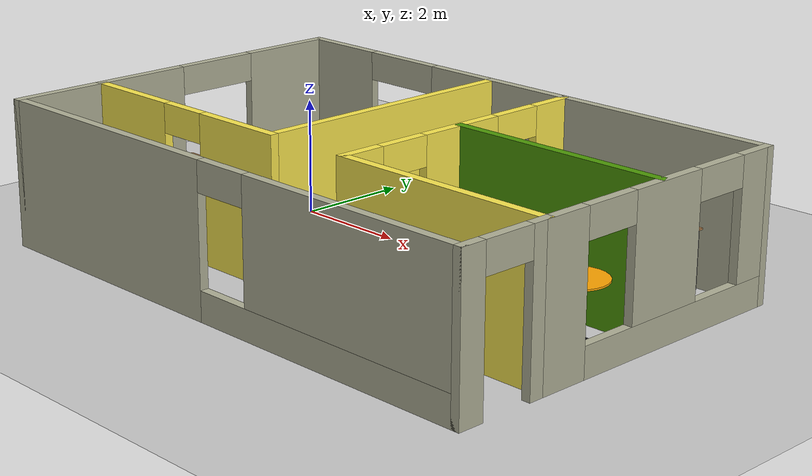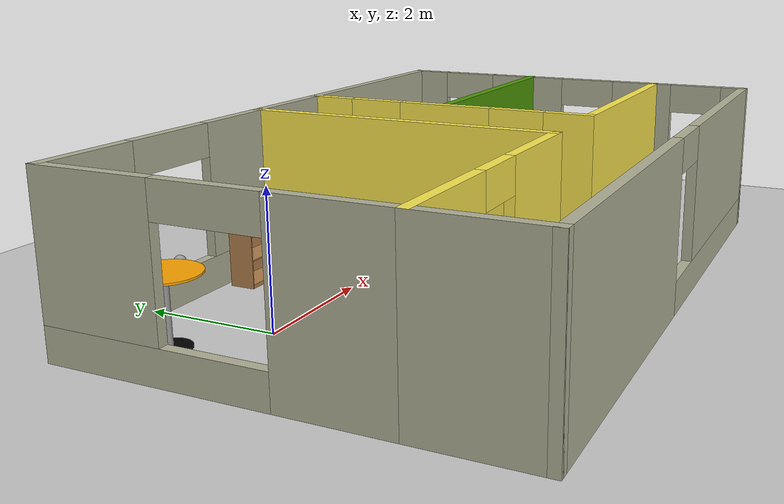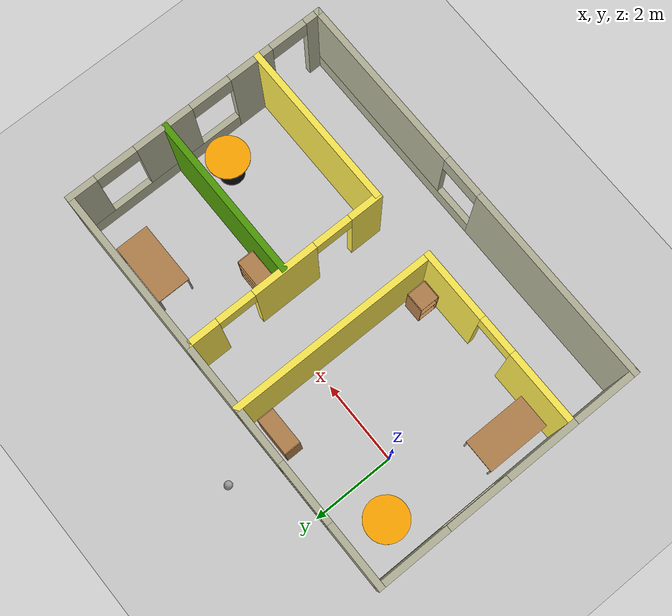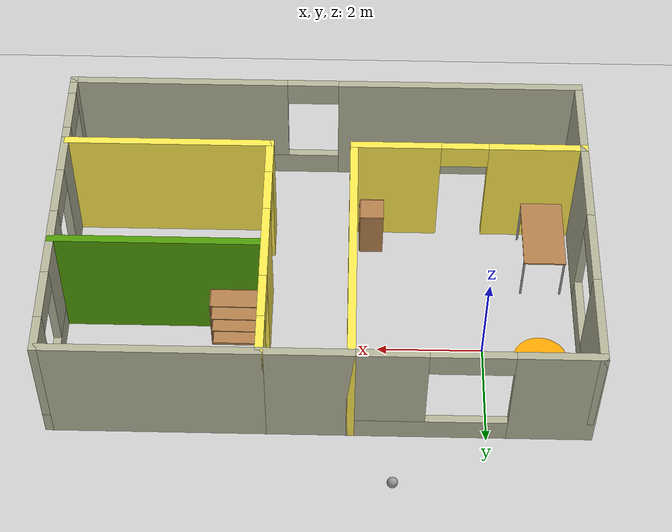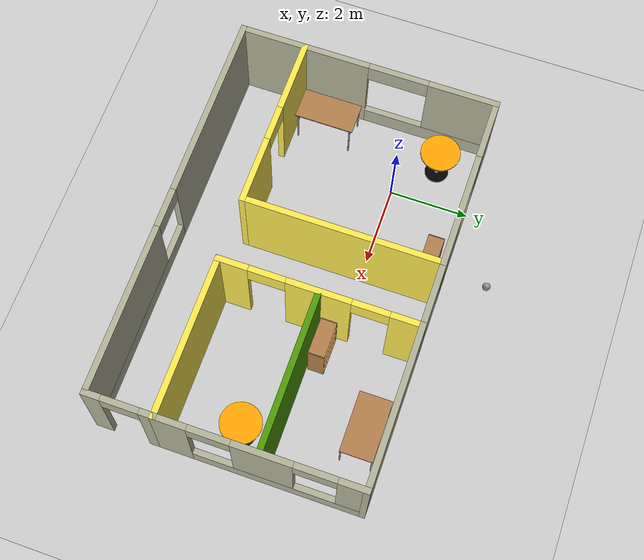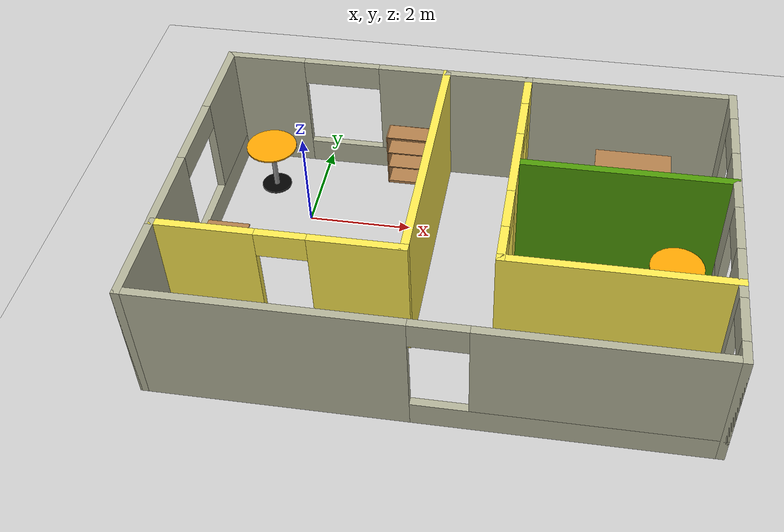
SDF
<sdf version="1.7">
 <world name="default">
  <plugin name="gzwelcome" filename="libgzwelcome.so"/>
  <light name="sun" type="directional">
   <pose>0 0 10 0 -0 0</pose>
   <diffuse>0.8 0.8 0.8 1</diffuse>
   <specular>0.2 0.2 0.2 1</specular>
   <attenuation>
    <range>1000</range>
    <constant>0.9</constant>
    <linear>0.01</linear>
    <quadratic>0.001</quadratic>
   </attenuation>
   <direction>-0.5 0.1 -0.9</direction>
   <spot><inner_angle>0</inner_angle><outer_angle>0</outer_angle><falloff>0</falloff></spot>
  </light>
  <model name="ground_plane">
   <static>1</static>
   <link name="link">
    <collision name="collision">
     <geometry><plane><normal>0 0 1</normal><size>100 100</size></plane></geometry>
     <surface><friction><ode><mu>100</mu><mu2>50</mu2></ode></friction></surface>
    </collision>
    <visual name="visual">
     <cast_shadows>0</cast_shadows>
     <geometry><plane><normal>0 0 1</normal><size>100 100</size></plane></geometry>
     <material>
      <script><uri>file://media/materials/scripts/gazebo.material</uri><name>Gazebo/Grey</name></script>
     </material>
    </visual>
   </link>
  </model>
  <gravity>0 0 -9.8</gravity>
  <magnetic_field>6e-06 2.3e-05 -4.2e-05</magnetic_field>
  <atmosphere type="adiabatic"/>
  <physics type="ode">
   <max_step_size>0.001</max_step_size>
   <real_time_factor>1</real_time_factor>
   <real_time_update_rate>1000</real_time_update_rate>
  </physics>
  <scene><ambient>0.4 0.4 0.4 1</ambient><background>0.7 0.7 0.7 1</background><shadows>1</shadows></scene>
  <spherical_coordinates>
   <surface_model>EARTH_WGS84</surface_model>
   <latitude_deg>0</latitude_deg>
   <longitude_deg>0</longitude_deg>
   <elevation>0</elevation>
   <heading_deg>0</heading_deg>
  </spherical_coordinates>
  <model name="building">
   <pose>3.06751 -1.35155 0 0 -0 0</pose>
   <link name="Wall_0">
    <pose>0 -3.225 0 0 -0 0</pose>
    <visual name="Wall_0_Visual_0">
     <pose>-2.62728 0 1.25 0 -0 0</pose>
     <geometry><box><size>4.74545 0.15 2.5</size></box></geometry>
     <material>
      <script><uri>file://media/materials/scripts/gazebo.material</uri><name>Gazebo/Residential</name></script>
      <ambient>1 1 1 1</ambient>
     </material>
     <meta><layer>0</layer></meta>
    </visual>
    <collision name="Wall_0_Collision_0">
     <geometry><box><size>4.74545 0.15 2.5</size></box></geometry>
     <pose>-2.62728 0 1.25 0 -0 0</pose>
    </collision>
    <visual name="Wall_0_Visual_1">
     <pose>2.37272 0 0.25 0 -0 0</pose>
     <geometry><box><size>5.25455 0.15 0.5</size></box></geometry>
     <material>
      <script><uri>file://media/materials/scripts/gazebo.material</uri><name>Gazebo/Residential</name></script>
      <ambient>1 1 1 1</ambient>
     </material>
     <meta><layer>0</layer></meta>
    </visual>
    <collision name="Wall_0_Collision_1">
     <geometry><box><size>5.25455 0.15 0.5</size></box></geometry>
     <pose>2.37272 0 0.25 0 -0 0</pose>
    </collision>
    <visual name="Wall_0_Visual_2">
     <pose>2.87272 0 1.5 0 -0 0</pose>
     <geometry><box><size>4.25455 0.15 2</size></box></geometry>
     <material>
      <script><uri>file://media/materials/scripts/gazebo.material</uri><name>Gazebo/Residential</name></script>
      <ambient>1 1 1 1</ambient>
     </material>
     <meta><layer>0</layer></meta>
    </visual>
    <collision name="Wall_0_Collision_2">
     <geometry><box><size>4.25455 0.15 2</size></box></geometry>
     <pose>2.87272 0 1.5 0 -0 0</pose>
    </collision>
    <visual name="Wall_0_Visual_3">
     <pose>0.245451 0 2.25 0 -0 0</pose>
     <geometry><box><size>1 0.15 0.5</size></box></geometry>
     <material>
      <script><uri>file://media/materials/scripts/gazebo.material</uri><name>Gazebo/Residential</name></script>
      <ambient>1 1 1 1</ambient>
     </material>
     <meta><layer>0</layer></meta>
    </visual>
    <collision name="Wall_0_Collision_3">
     <geometry><box><size>1 0.15 0.5</size></box></geometry>
     <pose>0.245451 0 2.25 0 -0 0</pose>
    </collision>
   </link>
   <link name="Wall_1">
    <pose>4.925 -2.425 0 0 -0 1.5708</pose>
    <visual name="Wall_1_Visual_0">
     <pose>-0.651737 0 1.25 0 -0 0</pose>
     <geometry><box><size>0.446526 0.15 2.5</size></box></geometry>
     <material>
      <script><uri>file://media/materials/scripts/gazebo.material</uri><name>Gazebo/Residential</name></script>
      <ambient>1 1 1 1</ambient>
     </material>
     <meta><layer>0</layer></meta>
    </visual>
    <collision name="Wall_1_Collision_0">
     <geometry><box><size>0.446526 0.15 2.5</size></box></geometry>
     <pose>-0.651737 0 1.25 0 -0 0</pose>
    </collision>
    <visual name="Wall_1_Visual_1">
     <pose>0.673263 0 1.25 0 -0 0</pose>
     <geometry><box><size>0.403474 0.15 2.5</size></box></geometry>
     <material>
      <script><uri>file://media/materials/scripts/gazebo.material</uri><name>Gazebo/Residential</name></script>
      <ambient>1 1 1 1</ambient>
     </material>
     <meta><layer>0</layer></meta>
    </visual>
    <collision name="Wall_1_Collision_1">
     <geometry><box><size>0.403474 0.15 2.5</size></box></geometry>
     <pose>0.673263 0 1.25 0 -0 0</pose>
    </collision>
    <visual name="Wall_1_Visual_2">
     <pose>0.021526 0 2.25 0 -0 0</pose>
     <geometry><box><size>0.9 0.15 0.5</size></box></geometry>
     <material>
      <script><uri>file://media/materials/scripts/gazebo.material</uri><name>Gazebo/Residential</name></script>
      <ambient>1 1 1 1</ambient>
     </material>
     <meta><layer>0</layer></meta>
    </visual>
    <collision name="Wall_1_Collision_2">
     <geometry><box><size>0.9 0.15 0.5</size></box></geometry>
     <pose>0.021526 0 2.25 0 -0 0</pose>
    </collision>
   </link>
   <link name="Wall_10">
    <collision name="Wall_10_Collision">
     <geometry><box><size>1.75 0.15 2.5</size></box></geometry>
     <pose>0 0 1.25 0 -0 0</pose>
    </collision>
    <visual name="Wall_10_Visual">
     <pose>0 0 1.25 0 -0 0</pose>
     <geometry><box><size>1.75 0.15 2.5</size></box></geometry>
     <material>
      <script><uri>file://media/materials/scripts/gazebo.material</uri><name>Gazebo/Residential</name></script>
      <ambient>1 1 1 1</ambient>
     </material>
     <meta><layer>0</layer></meta>
    </visual>
    <pose>0.225 3.225 0 0 -0 0</pose>
   </link>
   <link name="Wall_11">
    <pose>1.025 0.8 0 0 0 -1.5708</pose>
    <visual name="Wall_11_Visual_0">
     <pose>-2.08576 0 1.25 0 -0 0</pose>
     <geometry><box><size>0.828489 0.15 2.5</size></box></geometry>
     <material>
      <script><uri>file://media/materials/scripts/gazebo.material</uri><name>Gazebo/Grey</name></script>
      <ambient>0.988235 0.913725 0.309804 1</ambient>
     </material>
     <meta><layer>0</layer></meta>
    </visual>
    <collision name="Wall_11_Collision_0">
     <geometry><box><size>0.828489 0.15 2.5</size></box></geometry>
     <pose>-2.08576 0 1.25 0 -0 0</pose>
    </collision>
    <visual name="Wall_11_Visual_1">
     <pose>0.011538 0 1.25 0 -0 0</pose>
     <geometry><box><size>1.5661 0.15 2.5</size></box></geometry>
     <material>
      <script><uri>file://media/materials/scripts/gazebo.material</uri><name>Gazebo/Grey</name></script>
      <ambient>0.988235 0.913725 0.309804 1</ambient>
     </material>
     <meta><layer>0</layer></meta>
    </visual>
    <collision name="Wall_11_Collision_1">
     <geometry><box><size>1.5661 0.15 2.5</size></box></geometry>
     <pose>0.011538 0 1.25 0 -0 0</pose>
    </collision>
    <visual name="Wall_11_Visual_2">
     <pose>2.09729 0 1.25 0 -0 0</pose>
     <geometry><box><size>0.805412 0.15 2.5</size></box></geometry>
     <material>
      <script><uri>file://media/materials/scripts/gazebo.material</uri><name>Gazebo/Grey</name></script>
      <ambient>0.988235 0.913725 0.309804 1</ambient>
     </material>
     <meta><layer>0</layer></meta>
    </visual>
    <collision name="Wall_11_Collision_2">
     <geometry><box><size>0.805412 0.15 2.5</size></box></geometry>
     <pose>2.09729 0 1.25 0 -0 0</pose>
    </collision>
    <visual name="Wall_11_Visual_3">
     <pose>-1.22151 0 2.25 0 -0 0</pose>
     <geometry><box><size>0.9 0.15 0.5</size></box></geometry>
     <material>
      <script><uri>file://media/materials/scripts/gazebo.material</uri><name>Gazebo/Grey</name></script>
      <ambient>0.988235 0.913725 0.309804 1</ambient>
     </material>
     <meta><layer>0</layer></meta>
    </visual>
    <collision name="Wall_11_Collision_3">
     <geometry><box><size>0.9 0.15 0.5</size></box></geometry>
     <pose>-1.22151 0 2.25 0 -0 0</pose>
    </collision>
    <visual name="Wall_11_Visual_4">
     <pose>1.24459 0 2.25 0 -0 0</pose>
     <geometry><box><size>0.9 0.15 0.5</size></box></geometry>
     <material>
      <script><uri>file://media/materials/scripts/gazebo.material</uri><name>Gazebo/Grey</name></script>
      <ambient>0.988235 0.913725 0.309804 1</ambient>
     </material>
     <meta><layer>0</layer></meta>
    </visual>
    <collision name="Wall_11_Collision_4">
     <geometry><box><size>0.9 0.15 0.5</size></box></geometry>
     <pose>1.24459 0 2.25 0 -0 0</pose>
    </collision>
   </link>
   <link name="Wall_15">
    <pose>4.925 0.8 0 0 -0 1.5708</pose>
    <visual name="Wall_15_Visual_0">
     <pose>-2.07857 0 1.25 0 -0 0</pose>
     <geometry><box><size>0.842863 0.15 2.5</size></box></geometry>
     <material>
      <script><uri>file://media/materials/scripts/gazebo.material</uri><name>Gazebo/Residential</name></script>
      <ambient>1 1 1 1</ambient>
     </material>
     <meta><layer>0</layer></meta>
    </visual>
    <collision name="Wall_15_Collision_0">
     <geometry><box><size>0.842863 0.15 2.5</size></box></geometry>
     <pose>-2.07857 0 1.25 0 -0 0</pose>
    </collision>
    <visual name="Wall_15_Visual_1">
     <pose>0.421431 0 0.25 0 -0 0</pose>
     <geometry><box><size>4.15714 0.15 0.5</size></box></geometry>
     <material>
      <script><uri>file://media/materials/scripts/gazebo.material</uri><name>Gazebo/Residential</name></script>
      <ambient>1 1 1 1</ambient>
     </material>
     <meta><layer>0</layer></meta>
    </visual>
    <collision name="Wall_15_Collision_1">
     <geometry><box><size>4.15714 0.15 0.5</size></box></geometry>
     <pose>0.421431 0 0.25 0 -0 0</pose>
    </collision>
    <visual name="Wall_15_Visual_2">
     <pose>0.058422 0 1.5 0 -0 0</pose>
     <geometry><box><size>1.43112 0.15 2</size></box></geometry>
     <material>
      <script><uri>file://media/materials/scripts/gazebo.material</uri><name>Gazebo/Residential</name></script>
      <ambient>1 1 1 1</ambient>
     </material>
     <meta><layer>0</layer></meta>
    </visual>
    <collision name="Wall_15_Collision_2">
     <geometry><box><size>1.43112 0.15 2</size></box></geometry>
     <pose>0.058422 0 1.5 0 -0 0</pose>
    </collision>
    <visual name="Wall_15_Visual_3">
     <pose>2.13699 0 1.5 0 -0 0</pose>
     <geometry><box><size>0.726019 0.15 2</size></box></geometry>
     <material>
      <script><uri>file://media/materials/scripts/gazebo.material</uri><name>Gazebo/Residential</name></script>
      <ambient>1 1 1 1</ambient>
     </material>
     <meta><layer>0</layer></meta>
    </visual>
    <collision name="Wall_15_Collision_3">
     <geometry><box><size>0.726019 0.15 2</size></box></geometry>
     <pose>2.13699 0 1.5 0 -0 0</pose>
    </collision>
    <visual name="Wall_15_Visual_4">
     <pose>-1.15714 0 2.25 0 -0 0</pose>
     <geometry><box><size>1 0.15 0.5</size></box></geometry>
     <material>
      <script><uri>file://media/materials/scripts/gazebo.material</uri><name>Gazebo/Residential</name></script>
      <ambient>1 1 1 1</ambient>
     </material>
     <meta><layer>0</layer></meta>
    </visual>
    <collision name="Wall_15_Collision_4">
     <geometry><box><size>1 0.15 0.5</size></box></geometry>
     <pose>-1.15714 0 2.25 0 -0 0</pose>
    </collision>
    <visual name="Wall_15_Visual_5">
     <pose>1.27398 0 2.25 0 -0 0</pose>
     <geometry><box><size>1 0.15 0.5</size></box></geometry>
     <material>
      <script><uri>file://media/materials/scripts/gazebo.material</uri><name>Gazebo/Residential</name></script>
      <ambient>1 1 1 1</ambient>
     </material>
     <meta><layer>0</layer></meta>
    </visual>
    <collision name="Wall_15_Collision_5">
     <geometry><box><size>1 0.15 0.5</size></box></geometry>
     <pose>1.27398 0 2.25 0 -0 0</pose>
    </collision>
   </link>
   <link name="Wall_16">
    <collision name="Wall_16_Collision">
     <geometry><box><size>4.05 0.15 2.5</size></box></geometry>
     <pose>0 0 1.25 0 -0 0</pose>
    </collision>
    <visual name="Wall_16_Visual">
     <pose>0 0 1.25 0 -0 0</pose>
     <geometry><box><size>4.05 0.15 2.5</size></box></geometry>
     <material>
      <script><uri>file://media/materials/scripts/gazebo.material</uri><name>Gazebo/Residential</name></script>
      <ambient>1 1 1 1</ambient>
     </material>
     <meta><layer>0</layer></meta>
    </visual>
    <pose>2.975 3.225 0 0 -0 3.14159</pose>
   </link>
   <link name="Wall_23">
    <collision name="Wall_23_Collision">
     <geometry><box><size>4 0.15 2.5</size></box></geometry>
     <pose>0 0 1.25 0 -0 0</pose>
    </collision>
    <visual name="Wall_23_Visual">
     <pose>0 0 1.25 0 -0 0</pose>
     <geometry><box><size>4 0.15 2.5</size></box></geometry>
     <material>
      <script><uri>file://media/materials/scripts/gazebo.material</uri><name>Gazebo/Grey</name></script>
      <ambient>0.305882 0.603922 0.0235294 1</ambient>
     </material>
     <meta><layer>0</layer></meta>
    </visual>
    <pose>2.98078 0.793997 0 0 -0 0</pose>
   </link>
   <link name="Wall_25">
    <collision name="Wall_25_Collision">
     <geometry><box><size>4.05 0.15 2.5</size></box></geometry>
     <pose>0 0 1.25 0 -0 0</pose>
    </collision>
    <visual name="Wall_25_Visual">
     <pose>0 0 1.25 0 -0 0</pose>
     <geometry><box><size>4.05 0.15 2.5</size></box></geometry>
     <material>
      <script><uri>file://media/materials/scripts/gazebo.material</uri><name>Gazebo/Grey</name></script>
      <ambient>0.988235 0.913725 0.309804 1</ambient>
     </material>
     <meta><layer>0</layer></meta>
    </visual>
    <pose>2.975 -1.625 0 0 -0 0</pose>
   </link>
   <link name="Wall_27">
    <pose>-2.75 -1.625 0 0 -0 3.14159</pose>
    <visual name="Wall_27_Visual_0">
     <pose>-1.38731 0 1.25 0 -0 0</pose>
     <geometry><box><size>1.72539 0.15 2.5</size></box></geometry>
     <material>
      <script><uri>file://media/materials/scripts/gazebo.material</uri><name>Gazebo/Grey</name></script>
      <ambient>0.988235 0.913725 0.309804 1</ambient>
     </material>
     <meta><layer>0</layer></meta>
    </visual>
    <collision name="Wall_27_Collision_0">
     <geometry><box><size>1.72539 0.15 2.5</size></box></geometry>
     <pose>-1.38731 0 1.25 0 -0 0</pose>
    </collision>
    <visual name="Wall_27_Visual_1">
     <pose>1.31269 0 1.25 0 -0 0</pose>
     <geometry><box><size>1.87461 0.15 2.5</size></box></geometry>
     <material>
      <script><uri>file://media/materials/scripts/gazebo.material</uri><name>Gazebo/Grey</name></script>
      <ambient>0.988235 0.913725 0.309804 1</ambient>
     </material>
     <meta><layer>0</layer></meta>
    </visual>
    <collision name="Wall_27_Collision_1">
     <geometry><box><size>1.87461 0.15 2.5</size></box></geometry>
     <pose>1.31269 0 1.25 0 -0 0</pose>
    </collision>
    <visual name="Wall_27_Visual_2">
     <pose>-0.07461 0 2.25 0 -0 0</pose>
     <geometry><box><size>0.9 0.15 0.5</size></box></geometry>
     <material>
      <script><uri>file://media/materials/scripts/gazebo.material</uri><name>Gazebo/Grey</name></script>
      <ambient>0.988235 0.913725 0.309804 1</ambient>
     </material>
     <meta><layer>0</layer></meta>
    </visual>
    <collision name="Wall_27_Collision_2">
     <geometry><box><size>0.9 0.15 0.5</size></box></geometry>
     <pose>-0.07461 0 2.25 0 -0 0</pose>
    </collision>
   </link>
   <link name="Wall_3">
    <collision name="Wall_3_Collision">
     <geometry><box><size>1.75 0.15 2.5</size></box></geometry>
     <pose>0 0 1.25 0 -0 0</pose>
    </collision>
    <visual name="Wall_3_Visual">
     <pose>0 0 1.25 0 -0 0</pose>
     <geometry><box><size>1.75 0.15 2.5</size></box></geometry>
     <material>
      <script><uri>file://media/materials/scripts/gazebo.material</uri><name>Gazebo/Residential</name></script>
      <ambient>1 1 1 1</ambient>
     </material>
     <meta><layer>0</layer></meta>
    </visual>
    <pose>-4.925 -2.425 0 0 0 -1.5708</pose>
   </link>
   <link name="Wall_6">
    <pose>-4.925 0.8 0 0 -0 1.5708</pose>
    <visual name="Wall_6_Visual_0">
     <pose>-1.63514 0 1.25 0 -0 0</pose>
     <geometry><box><size>1.72972 0.15 2.5</size></box></geometry>
     <material>
      <script><uri>file://media/materials/scripts/gazebo.material</uri><name>Gazebo/Residential</name></script>
      <ambient>1 1 1 1</ambient>
     </material>
     <meta><layer>0</layer></meta>
    </visual>
    <collision name="Wall_6_Collision_0">
     <geometry><box><size>1.72972 0.15 2.5</size></box></geometry>
     <pose>-1.63514 0 1.25 0 -0 0</pose>
    </collision>
    <visual name="Wall_6_Visual_1">
     <pose>0.864858 0 0.25 0 -0 0</pose>
     <geometry><box><size>3.27028 0.15 0.5</size></box></geometry>
     <material>
      <script><uri>file://media/materials/scripts/gazebo.material</uri><name>Gazebo/Residential</name></script>
      <ambient>1 1 1 1</ambient>
     </material>
     <meta><layer>0</layer></meta>
    </visual>
    <collision name="Wall_6_Collision_1">
     <geometry><box><size>3.27028 0.15 0.5</size></box></geometry>
     <pose>0.864858 0 0.25 0 -0 0</pose>
    </collision>
    <visual name="Wall_6_Visual_2">
     <pose>1.61486 0 1.5 0 -0 0</pose>
     <geometry><box><size>1.77028 0.15 2</size></box></geometry>
     <material>
      <script><uri>file://media/materials/scripts/gazebo.material</uri><name>Gazebo/Residential</name></script>
      <ambient>1 1 1 1</ambient>
     </material>
     <meta><layer>0</layer></meta>
    </visual>
    <collision name="Wall_6_Collision_2">
     <geometry><box><size>1.77028 0.15 2</size></box></geometry>
     <pose>1.61486 0 1.5 0 -0 0</pose>
    </collision>
    <visual name="Wall_6_Visual_3">
     <pose>-0.020283 0 2.25 0 -0 0</pose>
     <geometry><box><size>1.5 0.15 0.5</size></box></geometry>
     <material>
      <script><uri>file://media/materials/scripts/gazebo.material</uri><name>Gazebo/Residential</name></script>
      <ambient>1 1 1 1</ambient>
     </material>
     <meta><layer>0</layer></meta>
    </visual>
    <collision name="Wall_6_Collision_3">
     <geometry><box><size>1.5 0.15 0.5</size></box></geometry>
     <pose>-0.020283 0 2.25 0 -0 0</pose>
    </collision>
   </link>
   <link name="Wall_7">
    <pose>-2.75 3.225 0 0 -0 0</pose>
    <visual name="Wall_7_Visual_0">
     <pose>-1.46228 0 1.25 0 -0 0</pose>
     <geometry><box><size>1.57544 0.15 2.5</size></box></geometry>
     <material>
      <script><uri>file://media/materials/scripts/gazebo.material</uri><name>Gazebo/Residential</name></script>
      <ambient>1 1 1 1</ambient>
     </material>
     <meta><layer>0</layer></meta>
    </visual>
    <collision name="Wall_7_Collision_0">
     <geometry><box><size>1.57544 0.15 2.5</size></box></geometry>
     <pose>-1.46228 0 1.25 0 -0 0</pose>
    </collision>
    <visual name="Wall_7_Visual_1">
     <pose>0.787722 0 0.25 0 -0 0</pose>
     <geometry><box><size>2.92456 0.15 0.5</size></box></geometry>
     <material>
      <script><uri>file://media/materials/scripts/gazebo.material</uri><name>Gazebo/Residential</name></script>
      <ambient>1 1 1 1</ambient>
     </material>
     <meta><layer>0</layer></meta>
    </visual>
    <collision name="Wall_7_Collision_1">
     <geometry><box><size>2.92456 0.15 0.5</size></box></geometry>
     <pose>0.787722 0 0.25 0 -0 0</pose>
    </collision>
    <visual name="Wall_7_Visual_2">
     <pose>1.53772 0 1.5 0 -0 0</pose>
     <geometry><box><size>1.42456 0.15 2</size></box></geometry>
     <material>
      <script><uri>file://media/materials/scripts/gazebo.material</uri><name>Gazebo/Residential</name></script>
      <ambient>1 1 1 1</ambient>
     </material>
     <meta><layer>0</layer></meta>
    </visual>
    <collision name="Wall_7_Collision_2">
     <geometry><box><size>1.42456 0.15 2</size></box></geometry>
     <pose>1.53772 0 1.5 0 -0 0</pose>
    </collision>
    <visual name="Wall_7_Visual_3">
     <pose>0.075443 0 2.25 0 -0 0</pose>
     <geometry><box><size>1.5 0.15 0.5</size></box></geometry>
     <material>
      <script><uri>file://media/materials/scripts/gazebo.material</uri><name>Gazebo/Residential</name></script>
      <ambient>1 1 1 1</ambient>
     </material>
     <meta><layer>0</layer></meta>
    </visual>
    <collision name="Wall_7_Collision_3">
     <geometry><box><size>1.5 0.15 0.5</size></box></geometry>
     <pose>0.075443 0 2.25 0 -0 0</pose>
    </collision>
   </link>
   <link name="Wall_8">
    <collision name="Wall_8_Collision">
     <geometry><box><size>5 0.15 2.5</size></box></geometry>
     <pose>0 0 1.25 0 -0 0</pose>
    </collision>
    <visual name="Wall_8_Visual">
     <pose>0 0 1.25 0 -0 0</pose>
     <geometry><box><size>5 0.15 2.5</size></box></geometry>
     <material>
      <script><uri>file://media/materials/scripts/gazebo.material</uri><name>Gazebo/Grey</name></script>
      <ambient>0.988235 0.913725 0.309804 1</ambient>
     </material>
     <meta><layer>0</layer></meta>
    </visual>
    <pose>-0.575 0.8 0 0 0 -1.5708</pose>
   </link>
   <static>1</static>
  </model>
  <model name="cabinet">
   <static>1</static>
   <link name="cabinet_bottom_plate">
    <inertial>
     <pose>0 0 -1 0 -0 0</pose>
     <inertia><ixx>2.05</ixx><ixy>0</ixy><ixz>0</ixz><iyy>2.05</iyy><iyz>0</iyz><izz>2.05</izz></inertia>
     <mass>25</mass>
    </inertial>
    <collision name="cabinet_bottom_plate_geom">
     <pose>0 0 0.01 0 -0 0</pose>
     <geometry><box><size>0.45 0.45 0.02</size></box></geometry>
    </collision>
    <visual name="cabinet_bottom_plate_geom_visual">
     <pose>0 0 0.01 0 -0 0</pose>
     <geometry><box><size>0.45 0.45 0.02</size></box></geometry>
     <material>
      <script><uri>file://media/materials/scripts/gazebo.material</uri><name>Gazebo/Wood</name></script>
     </material>
    </visual>
    <collision name="cabinet_bottom_plate_geom_cabinet_back_plate">
     <pose>0.235 0 0.51 0 -0 0</pose>
     <geometry><box><size>0.02 0.45 1.02</size></box></geometry>
    </collision>
    <visual name="cabinet_bottom_plate_geom_cabinet_back_plate_visual">
     <pose>0.235 0 0.51 0 -0 0</pose>
     <geometry><box><size>0.02 0.45 1.02</size></box></geometry>
     <material>
      <script><uri>file://media/materials/scripts/gazebo.material</uri><name>Gazebo/Wood</name></script>
     </material>
    </visual>
    <collision name="cabinet_bottom_plate_geom_cabinet_left_plate">
     <pose>0 0.235 0.51 0 -0 0</pose>
     <geometry><box><size>0.45 0.02 1.02</size></box></geometry>
    </collision>
    <visual name="cabinet_bottom_plate_geom_cabinet_left_plate_visual">
     <pose>0 0.235 0.51 0 -0 0</pose>
     <geometry><box><size>0.45 0.02 1.02</size></box></geometry>
     <material>
      <script><uri>file://media/materials/scripts/gazebo.material</uri><name>Gazebo/Wood</name></script>
     </material>
    </visual>
    <collision name="cabinet_bottom_plate_geom_cabinet_middle_plate">
     <pose>0 0 0.51 0 -0 0</pose>
     <geometry><box><size>0.45 0.45 0.02</size></box></geometry>
    </collision>
    <visual name="cabinet_bottom_plate_geom_cabinet_middle_plate_visual">
     <pose>0 0 0.51 0 -0 0</pose>
     <geometry><box><size>0.45 0.45 0.02</size></box></geometry>
     <material>
      <script><uri>file://media/materials/scripts/gazebo.material</uri><name>Gazebo/Wood</name></script>
     </material>
    </visual>
    <collision name="cabinet_bottom_plate_geom_cabinet_right_plate">
     <pose>0 -0.235 0.51 0 -0 0</pose>
     <geometry><box><size>0.45 0.02 1.02</size></box></geometry>
    </collision>
    <visual name="cabinet_bottom_plate_geom_cabinet_right_plate_visual">
     <pose>0 -0.235 0.51 0 -0 0</pose>
     <geometry><box><size>0.45 0.02 1.02</size></box></geometry>
     <material>
      <script><uri>file://media/materials/scripts/gazebo.material</uri><name>Gazebo/Wood</name></script>
     </material>
    </visual>
    <collision name="cabinet_bottom_plate_geom_cabinet_top_plate">
     <pose>0 0 1.01 0 -0 0</pose>
     <geometry><box><size>0.45 0.45 0.02</size></box></geometry>
    </collision>
    <visual name="cabinet_bottom_plate_geom_cabinet_top_plate_visual">
     <pose>0 0 1.01 0 -0 0</pose>
     <geometry><box><size>0.45 0.45 0.02</size></box></geometry>
     <material>
      <script><uri>file://media/materials/scripts/gazebo.material</uri><name>Gazebo/Wood</name></script>
     </material>
    </visual>
   </link>
   <pose>2.12547 -2.64033 0 0 -0 0</pose>
  </model>
  <model name="bookshelf">
   <static>1</static>
   <link name="link">
    <inertial><mass>1</mass></inertial>
    <collision name="back">
     <pose>0 0.005 0.6 0 -0 0</pose>
     <geometry><box><size>0.9 0.01 1.2</size></box></geometry>
    </collision>
    <visual name="visual1">
     <pose>0 0.005 0.6 0 -0 0</pose>
     <geometry><box><size>0.9 0.01 1.2</size></box></geometry>
     <material>
      <script><uri>file://media/materials/scripts/gazebo.material</uri><name>Gazebo/Wood</name></script>
     </material>
    </visual>
    <collision name="left_side">
     <pose>0.45 -0.195 0.6 0 -0 0</pose>
     <geometry><box><size>0.02 0.4 1.2</size></box></geometry>
    </collision>
    <visual name="visual2">
     <pose>0.45 -0.195 0.6 0 -0 0</pose>
     <geometry><box><size>0.02 0.4 1.2</size></box></geometry>
     <material>
      <script><uri>file://media/materials/scripts/gazebo.material</uri><name>Gazebo/Wood</name></script>
     </material>
    </visual>
    <collision name="right_side">
     <pose>-0.45 -0.195 0.6 0 -0 0</pose>
     <geometry><box><size>0.02 0.4 1.2</size></box></geometry>
    </collision>
    <visual name="visual3">
     <pose>-0.45 -0.195 0.6 0 -0 0</pose>
     <geometry><box><size>0.02 0.4 1.2</size></box></geometry>
     <material>
      <script><uri>file://media/materials/scripts/gazebo.material</uri><name>Gazebo/Wood</name></script>
     </material>
    </visual>
    <collision name="bottom">
     <pose>0 -0.195 0.03 0 -0 0</pose>
     <geometry><box><size>0.88 0.4 0.06</size></box></geometry>
    </collision>
    <visual name="visual4">
     <pose>0 -0.195 0.03 0 -0 0</pose>
     <geometry><box><size>0.88 0.4 0.06</size></box></geometry>
     <material>
      <script><uri>file://media/materials/scripts/gazebo.material</uri><name>Gazebo/Wood</name></script>
     </material>
    </visual>
    <collision name="top">
     <pose>0 -0.195 1.19 0 -0 0</pose>
     <geometry><box><size>0.88 0.4 0.02</size></box></geometry>
    </collision>
    <visual name="visual5">
     <pose>0 -0.195 1.19 0 -0 0</pose>
     <geometry><box><size>0.88 0.4 0.02</size></box></geometry>
     <material>
      <script><uri>file://media/materials/scripts/gazebo.material</uri><name>Gazebo/Wood</name></script>
     </material>
    </visual>
    <collision name="low_shelf">
     <pose>0 -0.195 0.43 0 -0 0</pose>
     <geometry><box><size>0.88 0.4 0.02</size></box></geometry>
    </collision>
    <visual name="visual6">
     <pose>0 -0.195 0.43 0 -0 0</pose>
     <geometry><box><size>0.88 0.4 0.02</size></box></geometry>
     <material>
      <script><uri>file://media/materials/scripts/gazebo.material</uri><name>Gazebo/Wood</name></script>
     </material>
    </visual>
    <collision name="high_shelf">
     <pose>0 -0.195 0.8 0 -0 0</pose>
     <geometry><box><size>0.88 0.4 0.02</size></box></geometry>
    </collision>
    <visual name="visual7">
     <pose>0 -0.195 0.8 0 -0 0</pose>
     <geometry><box><size>0.88 0.4 0.02</size></box></geometry>
     <material>
      <script><uri>file://media/materials/scripts/gazebo.material</uri><name>Gazebo/Wood</name></script>
     </material>
    </visual>
   </link>
   <pose>1.79468 1.68868 0 0 -0 0</pose>
  </model>
  <model name="table">
   <static>1</static>
   <link name="link">
    <collision name="surface">
     <pose>0 0 1 0 -0 0</pose>
     <geometry><box><size>1.5 0.8 0.03</size></box></geometry>
     <surface><friction><ode><mu>0.6</mu><mu2>0.6</mu2></ode></friction></surface>
    </collision>
    <visual name="visual1">
     <pose>0 0 1 0 -0 0</pose>
     <geometry><box><size>1.5 0.8 0.03</size></box></geometry>
     <material>
      <script><uri>file://media/materials/scripts/gazebo.material</uri><name>Gazebo/Wood</name></script>
     </material>
    </visual>
    <collision name="front_left_leg">
     <pose>0.68 0.38 0.5 0 -0 0</pose>
     <geometry><cylinder><radius>0.02</radius><length>1</length></cylinder></geometry>
    </collision>
    <visual name="front_left_leg">
     <pose>0.68 0.38 0.5 0 -0 0</pose>
     <geometry><cylinder><radius>0.02</radius><length>1</length></cylinder></geometry>
     <material>
      <script><uri>file://media/materials/scripts/gazebo.material</uri><name>Gazebo/Grey</name></script>
     </material>
    </visual>
    <collision name="front_right_leg">
     <pose>0.68 -0.38 0.5 0 -0 0</pose>
     <geometry><cylinder><radius>0.02</radius><length>1</length></cylinder></geometry>
    </collision>
    <visual name="front_right_leg">
     <pose>0.68 -0.38 0.5 0 -0 0</pose>
     <geometry><cylinder><radius>0.02</radius><length>1</length></cylinder></geometry>
     <material>
      <script><uri>file://media/materials/scripts/gazebo.material</uri><name>Gazebo/Grey</name></script>
     </material>
    </visual>
    <collision name="back_right_leg">
     <pose>-0.68 -0.38 0.5 0 -0 0</pose>
     <geometry><cylinder><radius>0.02</radius><length>1</length></cylinder></geometry>
    </collision>
    <visual name="back_right_leg">
     <pose>-0.68 -0.38 0.5 0 -0 0</pose>
     <geometry><cylinder><radius>0.02</radius><length>1</length></cylinder></geometry>
     <material>
      <script><uri>file://media/materials/scripts/gazebo.material</uri><name>Gazebo/Grey</name></script>
     </material>
    </visual>
    <collision name="back_left_leg">
     <pose>-0.68 0.38 0.5 0 -0 0</pose>
     <geometry><cylinder><radius>0.02</radius><length>1</length></cylinder></geometry>
    </collision>
    <visual name="back_left_leg">
     <pose>-0.68 0.38 0.5 0 -0 0</pose>
     <geometry><cylinder><radius>0.02</radius><length>1</length></cylinder></geometry>
     <material>
      <script><uri>file://media/materials/scripts/gazebo.material</uri><name>Gazebo/Grey</name></script>
     </material>
    </visual>
   </link>
   <pose>-1.17324 -2.09889 0 0 -0 1.56889</pose>
  </model>
  <model name="table_1">
   <static>1</static>
   <link name="link">
    <collision name="surface">
     <pose>0 0 1 0 -0 0</pose>
     <geometry><box><size>1.5 0.8 0.03</size></box></geometry>
     <surface><friction><ode><mu>0.6</mu><mu2>0.6</mu2></ode></friction></surface>
    </collision>
    <visual name="visual1">
     <pose>0 0 1 0 -0 0</pose>
     <geometry><box><size>1.5 0.8 0.03</size></box></geometry>
     <material>
      <script><uri>file://media/materials/scripts/gazebo.material</uri><name>Gazebo/Wood</name></script>
     </material>
    </visual>
    <collision name="front_left_leg">
     <pose>0.68 0.38 0.5 0 -0 0</pose>
     <geometry><cylinder><radius>0.02</radius><length>1</length></cylinder></geometry>
    </collision>
    <visual name="front_left_leg">
     <pose>0.68 0.38 0.5 0 -0 0</pose>
     <geometry><cylinder><radius>0.02</radius><length>1</length></cylinder></geometry>
     <material>
      <script><uri>file://media/materials/scripts/gazebo.material</uri><name>Gazebo/Grey</name></script>
     </material>
    </visual>
    <collision name="front_right_leg">
     <pose>0.68 -0.38 0.5 0 -0 0</pose>
     <geometry><cylinder><radius>0.02</radius><length>1</length></cylinder></geometry>
    </collision>
    <visual name="front_right_leg">
     <pose>0.68 -0.38 0.5 0 -0 0</pose>
     <geometry><cylinder><radius>0.02</radius><length>1</length></cylinder></geometry>
     <material>
      <script><uri>file://media/materials/scripts/gazebo.material</uri><name>Gazebo/Grey</name></script>
     </material>
    </visual>
    <collision name="back_right_leg">
     <pose>-0.68 -0.38 0.5 0 -0 0</pose>
     <geometry><cylinder><radius>0.02</radius><length>1</length></cylinder></geometry>
    </collision>
    <visual name="back_right_leg">
     <pose>-0.68 -0.38 0.5 0 -0 0</pose>
     <geometry><cylinder><radius>0.02</radius><length>1</length></cylinder></geometry>
     <material>
      <script><uri>file://media/materials/scripts/gazebo.material</uri><name>Gazebo/Grey</name></script>
     </material>
    </visual>
    <collision name="back_left_leg">
     <pose>-0.68 0.38 0.5 0 -0 0</pose>
     <geometry><cylinder><radius>0.02</radius><length>1</length></cylinder></geometry>
    </collision>
    <visual name="back_left_leg">
     <pose>-0.68 0.38 0.5 0 -0 0</pose>
     <geometry><cylinder><radius>0.02</radius><length>1</length></cylinder></geometry>
     <material>
      <script><uri>file://media/materials/scripts/gazebo.material</uri><name>Gazebo/Grey</name></script>
     </material>
    </visual>
   </link>
   <pose>6.28341 1.35049 0 0 -0 0</pose>
  </model>
  <model name="white_ball">
   <link name="link_0">
    <inertial>
     <mass>1</mass>
     <inertia><ixx>0.1</ixx><ixy>0</ixy><ixz>0</ixz><iyy>0.1</iyy><iyz>0</iyz><izz>0.1</izz></inertia>
    </inertial>
    <pose>0 0 0.1 0 -0 0</pose>
    <visual name="visual">
     <geometry><sphere><radius>0.1</radius></sphere></geometry>
     <material>
      <lighting>1</lighting>
      <script><uri>file://media/materials/scripts/gazebo.material</uri><name>Gazebo/Grey</name></script>
      <shader type="pixel"><normal_map>__default__</normal_map></shader>
      <ambient>1 1 1 1</ambient>
      <diffuse>1 1 1 1</diffuse>
      <specular>1 1 1 1</specular>
      <emissive>1 0.9 1 1</emissive>
     </material>
    </visual>
    <collision name="collision">
     <geometry><sphere><radius>0.1</radius></sphere></geometry>
     <surface>
      <friction>
       <ode><mu>1</mu><mu2>1</mu2><fdir1>0 0 0</fdir1><slip1>0</slip1><slip2>0</slip2></ode>
       <torsional>
        <coefficient>1</coefficient>
        <patch_radius>0</patch_radius>
        <surface_radius>0</surface_radius>
        <use_patch_radius>1</use_patch_radius>
        <ode><slip>0</slip></ode>
       </torsional>
      </friction>
      <bounce><restitution_coefficient>0</restitution_coefficient><threshold>1e+06</threshold></bounce>
      <contact>
       <collide_without_contact>0</collide_without_contact>
       <collide_without_contact_bitmask>1</collide_without_contact_bitmask>
       <collide_bitmask>1</collide_bitmask>
       <ode>
        <soft_cfm>0</soft_cfm>
        <soft_erp>0.2</soft_erp>
        <kp>1e+13</kp>
        <kd>1</kd>
        <max_vel>0.01</max_vel>
        <min_depth>0</min_depth>
       </ode>
       <bullet>
        <split_impulse>1</split_impulse>
        <split_impulse_penetration_threshold>-0.01</split_impulse_penetration_threshold>
        <soft_cfm>0</soft_cfm>
        <soft_erp>0.2</soft_erp>
        <kp>1e+13</kp>
        <kd>1</kd>
       </bullet>
      </contact>
     </surface>
    </collision>
   </link>
   <static>0</static>
   <pose>1.71656 2.9914 -0 0 -0 0</pose>
  </model>
  <model name="small_table">
   <link name="table_base">
    <inertial>
     <mass>3</mass>
     <inertia><ixx>0.145833</ixx><ixy>0</ixy><ixz>0</ixz><iyy>0.145833</iyy><iyz>0</iyz><izz>0.125</izz></inertia>
    </inertial>
    <pose>0 0 0.015 0 -0 0</pose>
    <visual name="visual">
     <geometry><cylinder><radius>0.3</radius><length>0.03</length></cylinder></geometry>
     <material>
      <ambient>0 0 0 1</ambient>
      <diffuse>0 0 0 1</diffuse>
      <specular>0 0 0 0</specular>
      <emissive>0 0 0 1</emissive>
     </material>
    </visual>
    <collision name="collision">
     <geometry><cylinder><radius>0.3</radius><length>0.03</length></cylinder></geometry>
     <surface>
      <friction>
       <ode><mu>1</mu><mu2>1</mu2><fdir1>0 0 0</fdir1><slip1>0</slip1><slip2>0</slip2></ode>
       <torsional>
        <coefficient>1</coefficient>
        <patch_radius>0</patch_radius>
        <surface_radius>0</surface_radius>
        <use_patch_radius>1</use_patch_radius>
        <ode><slip>0</slip></ode>
       </torsional>
      </friction>
      <bounce><restitution_coefficient>0</restitution_coefficient><threshold>1e+06</threshold></bounce>
      <contact>
       <collide_without_contact>0</collide_without_contact>
       <collide_without_contact_bitmask>1</collide_without_contact_bitmask>
       <collide_bitmask>1</collide_bitmask>
       <ode>
        <soft_cfm>0</soft_cfm>
        <soft_erp>0.2</soft_erp>
        <kp>1e+13</kp>
        <kd>1</kd>
        <max_vel>0.01</max_vel>
        <min_depth>0</min_depth>
       </ode>
       <bullet>
        <split_impulse>1</split_impulse>
        <split_impulse_penetration_threshold>-0.01</split_impulse_penetration_threshold>
        <soft_cfm>0</soft_cfm>
        <soft_erp>0.2</soft_erp>
        <kp>1e+13</kp>
        <kd>1</kd>
       </bullet>
      </contact>
     </surface>
    </collision>
   </link>
   <link name="table_top">
    <inertial>
     <mass>1</mass>
     <inertia><ixx>0.145833</ixx><ixy>0</ixy><ixz>0</ixz><iyy>0.145833</iyy><iyz>0</iyz><izz>0.125</izz></inertia>
    </inertial>
    <pose>0 0 1.015 0 -0 0</pose>
    <visual name="visual">
     <geometry><cylinder><radius>0.5</radius><length>0.03</length></cylinder></geometry>
     <material>
      <ambient>1 0.65 0 1</ambient>
      <diffuse>1 0.65 0 1</diffuse>
      <specular>0 0 0 0</specular>
      <emissive>0 0 0 1</emissive>
     </material>
    </visual>
    <collision name="collision">
     <geometry><cylinder><radius>0.5</radius><length>0.03</length></cylinder></geometry>
     <surface>
      <friction>
       <ode><mu>1</mu><mu2>1</mu2><fdir1>0 0 0</fdir1><slip1>0</slip1><slip2>0</slip2></ode>
       <torsional>
        <coefficient>1</coefficient>
        <patch_radius>0</patch_radius>
        <surface_radius>0</surface_radius>
        <use_patch_radius>1</use_patch_radius>
        <ode><slip>0</slip></ode>
       </torsional>
      </friction>
      <bounce><restitution_coefficient>0</restitution_coefficient><threshold>1e+06</threshold></bounce>
      <contact>
       <collide_without_contact>0</collide_without_contact>
       <collide_without_contact_bitmask>1</collide_without_contact_bitmask>
       <collide_bitmask>1</collide_bitmask>
       <ode>
        <soft_cfm>0</soft_cfm>
        <soft_erp>0.2</soft_erp>
        <kp>1e+13</kp>
        <kd>1</kd>
        <max_vel>0.01</max_vel>
        <min_depth>0</min_depth>
       </ode>
       <bullet>
        <split_impulse>1</split_impulse>
        <split_impulse_penetration_threshold>-0.01</split_impulse_penetration_threshold>
        <soft_cfm>0</soft_cfm>
        <soft_erp>0.2</soft_erp>
        <kp>1e+13</kp>
        <kd>1</kd>
       </bullet>
      </contact>
     </surface>
    </collision>
   </link>
   <link name="table_leg">
    <inertial>
     <mass>2</mass>
     <inertia><ixx>0.145833</ixx><ixy>0</ixy><ixz>0</ixz><iyy>0.145833</iyy><iyz>0</iyz><izz>0.125</izz></inertia>
    </inertial>
    <pose>0 0 0.505 0 -0 0</pose>
    <visual name="visual">
     <geometry><cylinder><radius>0.05</radius><length>1</length></cylinder></geometry>
     <material>
      <lighting>1</lighting>
      <script><uri>file://media/materials/scripts/gazebo.material</uri><name>Gazebo/Grey</name></script>
      <shader type="pixel"><normal_map>__default__</normal_map></shader>
      <ambient>0.3 0.3 0.3 1</ambient>
      <diffuse>0.7 0.7 0.7 1</diffuse>
      <specular>0.01 0.01 0.01 1</specular>
      <emissive>0 0 0 1</emissive>
     </material>
    </visual>
    <collision name="collision">
     <geometry><cylinder><radius>0.05</radius><length>1</length></cylinder></geometry>
     <surface>
      <friction>
       <ode><mu>1</mu><mu2>1</mu2><fdir1>0 0 0</fdir1><slip1>0</slip1><slip2>0</slip2></ode>
       <torsional>
        <coefficient>1</coefficient>
        <patch_radius>0</patch_radius>
        <surface_radius>0</surface_radius>
        <use_patch_radius>1</use_patch_radius>
        <ode><slip>0</slip></ode>
       </torsional>
      </friction>
      <bounce><restitution_coefficient>0</restitution_coefficient><threshold>1e+06</threshold></bounce>
      <contact>
       <collide_without_contact>0</collide_without_contact>
       <collide_without_contact_bitmask>1</collide_without_contact_bitmask>
       <collide_bitmask>1</collide_bitmask>
       <ode>
        <soft_cfm>0</soft_cfm>
        <soft_erp>0.2</soft_erp>
        <kp>1e+13</kp>
        <kd>1</kd>
        <max_vel>0.01</max_vel>
        <min_depth>0</min_depth>
       </ode>
       <bullet>
        <split_impulse>1</split_impulse>
        <split_impulse_penetration_threshold>-0.01</split_impulse_penetration_threshold>
        <soft_cfm>0</soft_cfm>
        <soft_erp>0.2</soft_erp>
        <kp>1e+13</kp>
        <kd>1</kd>
       </bullet>
      </contact>
     </surface>
    </collision>
   </link>
   <joint name="table_base_JOINT_1" type="fixed">
    <parent>table_base</parent>
    <child>table_leg</child>
    <physics>
     <ode><limit><cfm>0</cfm><erp>0.2</erp></limit><suspension><cfm>0</cfm><erp>0.2</erp></suspension></ode>
    </physics>
   </joint>
   <joint name="table_leg_JOINT_2" type="fixed">
    <parent>table_leg</parent>
    <child>table_top</child>
    <physics>
     <ode><limit><cfm>0</cfm><erp>0.2</erp></limit><suspension><cfm>0</cfm><erp>0.2</erp></suspension></ode>
    </physics>
   </joint>
   <static>0</static>
   <pose>-0.951358 0.910412 -3e-06 -0 -0 -0.00013</pose>
  </model>
  <model name="small_table_0">
   <link name="table_base">
    <inertial>
     <mass>3</mass>
     <inertia><ixx>0.145833</ixx><ixy>0</ixy><ixz>0</ixz><iyy>0.145833</iyy><iyz>0</iyz><izz>0.125</izz></inertia>
    </inertial>
    <pose>0 0 0.015 0 -0 0</pose>
    <visual name="visual">
     <geometry><cylinder><radius>0.3</radius><length>0.03</length></cylinder></geometry>
     <material>
      <ambient>0 0 0 1</ambient>
      <diffuse>0 0 0 1</diffuse>
      <specular>0 0 0 0</specular>
      <emissive>0 0 0 1</emissive>
     </material>
    </visual>
    <collision name="collision">
     <geometry><cylinder><radius>0.3</radius><length>0.03</length></cylinder></geometry>
     <surface>
      <friction>
       <ode><mu>1</mu><mu2>1</mu2><fdir1>0 0 0</fdir1><slip1>0</slip1><slip2>0</slip2></ode>
       <torsional>
        <coefficient>1</coefficient>
        <patch_radius>0</patch_radius>
        <surface_radius>0</surface_radius>
        <use_patch_radius>1</use_patch_radius>
        <ode><slip>0</slip></ode>
       </torsional>
      </friction>
      <bounce><restitution_coefficient>0</restitution_coefficient><threshold>1e+06</threshold></bounce>
      <contact>
       <collide_without_contact>0</collide_without_contact>
       <collide_without_contact_bitmask>1</collide_without_contact_bitmask>
       <collide_bitmask>1</collide_bitmask>
       <ode>
        <soft_cfm>0</soft_cfm>
        <soft_erp>0.2</soft_erp>
        <kp>1e+13</kp>
        <kd>1</kd>
        <max_vel>0.01</max_vel>
        <min_depth>0</min_depth>
       </ode>
       <bullet>
        <split_impulse>1</split_impulse>
        <split_impulse_penetration_threshold>-0.01</split_impulse_penetration_threshold>
        <soft_cfm>0</soft_cfm>
        <soft_erp>0.2</soft_erp>
        <kp>1e+13</kp>
        <kd>1</kd>
       </bullet>
      </contact>
     </surface>
    </collision>
   </link>
   <link name="table_top">
    <inertial>
     <mass>1</mass>
     <inertia><ixx>0.145833</ixx><ixy>0</ixy><ixz>0</ixz><iyy>0.145833</iyy><iyz>0</iyz><izz>0.125</izz></inertia>
    </inertial>
    <pose>0 0 1.015 0 -0 0</pose>
    <visual name="visual">
     <geometry><cylinder><radius>0.5</radius><length>0.03</length></cylinder></geometry>
     <material>
      <ambient>1 0.65 0 1</ambient>
      <diffuse>1 0.65 0 1</diffuse>
      <specular>0 0 0 0</specular>
      <emissive>0 0 0 1</emissive>
     </material>
    </visual>
    <collision name="collision">
     <geometry><cylinder><radius>0.5</radius><length>0.03</length></cylinder></geometry>
     <surface>
      <friction>
       <ode><mu>1</mu><mu2>1</mu2><fdir1>0 0 0</fdir1><slip1>0</slip1><slip2>0</slip2></ode>
       <torsional>
        <coefficient>1</coefficient>
        <patch_radius>0</patch_radius>
        <surface_radius>0</surface_radius>
        <use_patch_radius>1</use_patch_radius>
        <ode><slip>0</slip></ode>
       </torsional>
      </friction>
      <bounce><restitution_coefficient>0</restitution_coefficient><threshold>1e+06</threshold></bounce>
      <contact>
       <collide_without_contact>0</collide_without_contact>
       <collide_without_contact_bitmask>1</collide_without_contact_bitmask>
       <collide_bitmask>1</collide_bitmask>
       <ode>
        <soft_cfm>0</soft_cfm>
        <soft_erp>0.2</soft_erp>
        <kp>1e+13</kp>
        <kd>1</kd>
        <max_vel>0.01</max_vel>
        <min_depth>0</min_depth>
       </ode>
       <bullet>
        <split_impulse>1</split_impulse>
        <split_impulse_penetration_threshold>-0.01</split_impulse_penetration_threshold>
        <soft_cfm>0</soft_cfm>
        <soft_erp>0.2</soft_erp>
        <kp>1e+13</kp>
        <kd>1</kd>
       </bullet>
      </contact>
     </surface>
    </collision>
   </link>
   <link name="table_leg">
    <inertial>
     <mass>2</mass>
     <inertia><ixx>0.145833</ixx><ixy>0</ixy><ixz>0</ixz><iyy>0.145833</iyy><iyz>0</iyz><izz>0.125</izz></inertia>
    </inertial>
    <pose>0 0 0.505 0 -0 0</pose>
    <visual name="visual">
     <geometry><cylinder><radius>0.05</radius><length>1</length></cylinder></geometry>
     <material>
      <lighting>1</lighting>
      <script><uri>file://media/materials/scripts/gazebo.material</uri><name>Gazebo/Grey</name></script>
      <shader type="pixel"><normal_map>__default__</normal_map></shader>
      <ambient>0.3 0.3 0.3 1</ambient>
      <diffuse>0.7 0.7 0.7 1</diffuse>
      <specular>0.01 0.01 0.01 1</specular>
      <emissive>0 0 0 1</emissive>
     </material>
    </visual>
    <collision name="collision">
     <geometry><cylinder><radius>0.05</radius><length>1</length></cylinder></geometry>
     <surface>
      <friction>
       <ode><mu>1</mu><mu2>1</mu2><fdir1>0 0 0</fdir1><slip1>0</slip1><slip2>0</slip2></ode>
       <torsional>
        <coefficient>1</coefficient>
        <patch_radius>0</patch_radius>
        <surface_radius>0</surface_radius>
        <use_patch_radius>1</use_patch_radius>
        <ode><slip>0</slip></ode>
       </torsional>
      </friction>
      <bounce><restitution_coefficient>0</restitution_coefficient><threshold>1e+06</threshold></bounce>
      <contact>
       <collide_without_contact>0</collide_without_contact>
       <collide_without_contact_bitmask>1</collide_without_contact_bitmask>
       <collide_bitmask>1</collide_bitmask>
       <ode>
        <soft_cfm>0</soft_cfm>
        <soft_erp>0.2</soft_erp>
        <kp>1e+13</kp>
        <kd>1</kd>
        <max_vel>0.01</max_vel>
        <min_depth>0</min_depth>
       </ode>
       <bullet>
        <split_impulse>1</split_impulse>
        <split_impulse_penetration_threshold>-0.01</split_impulse_penetration_threshold>
        <soft_cfm>0</soft_cfm>
        <soft_erp>0.2</soft_erp>
        <kp>1e+13</kp>
        <kd>1</kd>
       </bullet>
      </contact>
     </surface>
    </collision>
   </link>
   <joint name="table_base_JOINT_1" type="fixed">
    <parent>table_base</parent>
    <child>table_leg</child>
    <physics>
     <ode><limit><cfm>0</cfm><erp>0.2</erp></limit><suspension><cfm>0</cfm><erp>0.2</erp></suspension></ode>
    </physics>
   </joint>
   <joint name="table_leg_JOINT_2" type="fixed">
    <parent>table_leg</parent>
    <child>table_top</child>
    <physics>
     <ode><limit><cfm>0</cfm><erp>0.2</erp></limit><suspension><cfm>0</cfm><erp>0.2</erp></suspension></ode>
    </physics>
   </joint>
   <static>0</static>
   <pose>7.15587 -1.34676 0 0 0 -0.000126</pose>
  </model>
  <model name="bookshelf_0">
   <static>1</static>
   <link name="link">
    <inertial><mass>1</mass></inertial>
    <collision name="back">
     <pose>0 0.005 0.6 0 -0 0</pose>
     <geometry><box><size>0.9 0.01 1.2</size></box></geometry>
    </collision>
    <visual name="visual1">
     <pose>0 0.005 0.6 0 -0 0</pose>
     <geometry><box><size>0.9 0.01 1.2</size></box></geometry>
     <material>
      <script><uri>file://media/materials/scripts/gazebo.material</uri><name>Gazebo/Wood</name></script>
     </material>
    </visual>
    <collision name="left_side">
     <pose>0.45 -0.195 0.6 0 -0 0</pose>
     <geometry><box><size>0.02 0.4 1.2</size></box></geometry>
    </collision>
    <visual name="visual2">
     <pose>0.45 -0.195 0.6 0 -0 0</pose>
     <geometry><box><size>0.02 0.4 1.2</size></box></geometry>
     <material>
      <script><uri>file://media/materials/scripts/gazebo.material</uri><name>Gazebo/Wood</name></script>
     </material>
    </visual>
    <collision name="right_side">
     <pose>-0.45 -0.195 0.6 0 -0 0</pose>
     <geometry><box><size>0.02 0.4 1.2</size></box></geometry>
    </collision>
    <visual name="visual3">
     <pose>-0.45 -0.195 0.6 0 -0 0</pose>
     <geometry><box><size>0.02 0.4 1.2</size></box></geometry>
     <material>
      <script><uri>file://media/materials/scripts/gazebo.material</uri><name>Gazebo/Wood</name></script>
     </material>
    </visual>
    <collision name="bottom">
     <pose>0 -0.195 0.03 0 -0 0</pose>
     <geometry><box><size>0.88 0.4 0.06</size></box></geometry>
    </collision>
    <visual name="visual4">
     <pose>0 -0.195 0.03 0 -0 0</pose>
     <geometry><box><size>0.88 0.4 0.06</size></box></geometry>
     <material>
      <script><uri>file://media/materials/scripts/gazebo.material</uri><name>Gazebo/Wood</name></script>
     </material>
    </visual>
    <collision name="top">
     <pose>0 -0.195 1.19 0 -0 0</pose>
     <geometry><box><size>0.88 0.4 0.02</size></box></geometry>
    </collision>
    <visual name="visual5">
     <pose>0 -0.195 1.19 0 -0 0</pose>
     <geometry><box><size>0.88 0.4 0.02</size></box></geometry>
     <material>
      <script><uri>file://media/materials/scripts/gazebo.material</uri><name>Gazebo/Wood</name></script>
     </material>
    </visual>
    <collision name="low_shelf">
     <pose>0 -0.195 0.43 0 -0 0</pose>
     <geometry><box><size>0.88 0.4 0.02</size></box></geometry>
    </collision>
    <visual name="visual6">
     <pose>0 -0.195 0.43 0 -0 0</pose>
     <geometry><box><size>0.88 0.4 0.02</size></box></geometry>
     <material>
      <script><uri>file://media/materials/scripts/gazebo.material</uri><name>Gazebo/Wood</name></script>
     </material>
    </visual>
    <collision name="high_shelf">
     <pose>0 -0.195 0.8 0 -0 0</pose>
     <geometry><box><size>0.88 0.4 0.02</size></box></geometry>
    </collision>
    <visual name="visual7">
     <pose>0 -0.195 0.8 0 -0 0</pose>
     <geometry><box><size>0.88 0.4 0.02</size></box></geometry>
     <material>
      <script><uri>file://media/materials/scripts/gazebo.material</uri><name>Gazebo/Wood</name></script>
     </material>
    </visual>
   </link>
   <pose>4.67233 -0.443302 0 0 -0 3.13486</pose>
  </model>
 </world>
</sdf>
